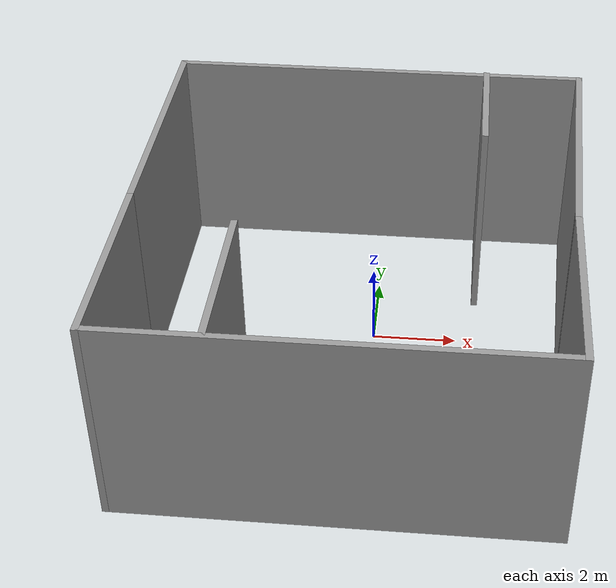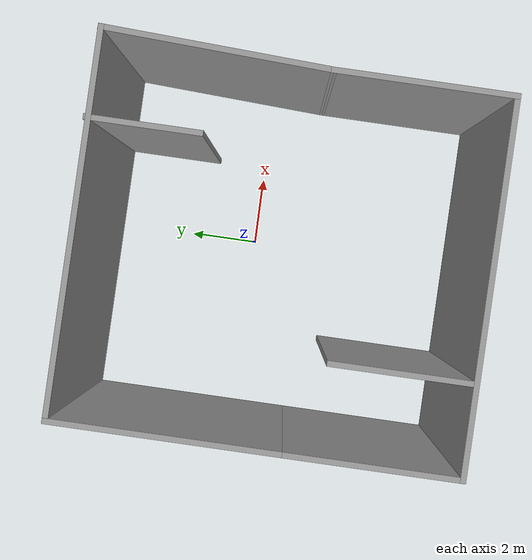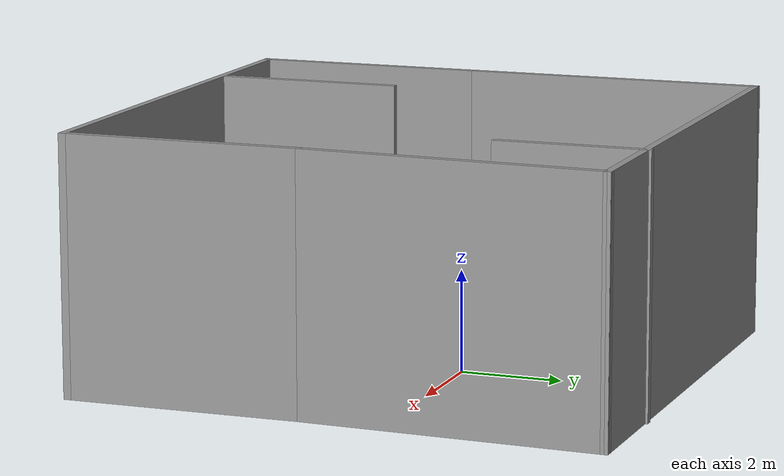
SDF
<?xml version='1.0'?>
<sdf version='1.7'>
  <model name='maailm.world'>
    <pose>-0.233436 -0.8805 0 0 -0 0</pose>
    <link name='Wall_1'>
      <collision name='Wall_1_Collision'>
        <geometry>
          <box>
            <size>4.74 0.15 5</size>
          </box>
        </geometry>
        <pose>0 0 2.5 0 -0 0</pose>
      </collision>
      <visual name='Wall_1_Visual'>
        <pose>0 0 2.5 0 -0 0</pose>
        <geometry>
          <box>
            <size>4.74 0.15 5</size>
          </box>
        </geometry>
        <material>
          <script>
            <uri>file://media/materials/scripts/gazebo.material</uri>
            <name>Gazebo/Grey</name>
          </script>
          <ambient>1 1 1 1</ambient>
        </material>
        <meta>
          <layer>0</layer>
        </meta>
      </visual>
      <pose>4.67344 -2.9545 0 0 -0 -1.5708</pose>
    </link>
    <link name='Wall_10'>
      <collision name='Wall_10_Collision'>
        <geometry>
          <box>
            <size>6 0.15 5</size>
          </box>
        </geometry>
        <pose>0 0 2.5 0 -0 0</pose>
      </collision>
      <visual name='Wall_10_Visual'>
        <pose>0 0 2.5 0 -0 0</pose>
        <geometry>
          <box>
            <size>6 0.15 5</size>
          </box>
        </geometry>
        <material>
          <script>
            <uri>file://media/materials/scripts/gazebo.material</uri>
            <name>Gazebo/Grey</name>
          </script>
          <ambient>1 1 1 1</ambient>
        </material>
        <meta>
          <layer>0</layer>
        </meta>
      </visual>
      <pose>-4.92656 2.2755 0 0 -0 1.5708</pose>
    </link>
    <link name='Wall_11'>
      <collision name='Wall_11_Collision'>
        <geometry>
          <box>
            <size>10 0.15 5</size>
          </box>
        </geometry>
        <pose>0 0 2.5 0 -0 0</pose>
      </collision>
      <visual name='Wall_11_Visual'>
        <pose>0 0 2.5 0 -0 0</pose>
        <geometry>
          <box>
            <size>10 0.15 5</size>
          </box>
        </geometry>
        <material>
          <script>
            <uri>file://media/materials/scripts/gazebo.material</uri>
            <name>Gazebo/Grey</name>
          </script>
          <ambient>1 1 1 1</ambient>
        </material>
        <meta>
          <layer>0</layer>
        </meta>
      </visual>
      <pose>-0.001564 5.2005 0 0 -0 0</pose>
    </link>
    <link name='Wall_12'>
      <collision name='Wall_12_Collision'>
        <geometry>
          <box>
            <size>6.01533 0.15 5</size>
          </box>
        </geometry>
        <pose>0 0 2.5 0 -0 0</pose>
      </collision>
      <visual name='Wall_12_Visual'>
        <pose>0 0 2.5 0 -0 0</pose>
        <geometry>
          <box>
            <size>6.01533 0.15 5</size>
          </box>
        </geometry>
        <material>
          <script>
            <uri>file://media/materials/scripts/gazebo.material</uri>
            <name>Gazebo/Grey</name>
          </script>
          <ambient>1 1 1 1</ambient>
        </material>
        <meta>
          <layer>0</layer>
        </meta>
      </visual>
      <pose>4.79844 2.2705 0 0 -0 -1.61343</pose>
    </link>
    <link name='Wall_2'>
      <collision name='Wall_2_Collision'>
        <geometry>
          <box>
            <size>9.75 0.15 5</size>
          </box>
        </geometry>
        <pose>0 0 2.5 0 -0 0</pose>
      </collision>
      <visual name='Wall_2_Visual'>
        <pose>0 0 2.5 0 -0 0</pose>
        <geometry>
          <box>
            <size>9.75 0.15 5</size>
          </box>
        </geometry>
        <material>
          <script>
            <uri>file://media/materials/scripts/gazebo.material</uri>
            <name>Gazebo/Grey</name>
          </script>
          <ambient>1 1 1 1</ambient>
        </material>
        <meta>
          <layer>0</layer>
        </meta>
      </visual>
      <pose>-0.126564 -5.2495 0 0 -0 3.14159</pose>
    </link>
    <link name='Wall_3'>
      <collision name='Wall_3_Collision'>
        <geometry>
          <box>
            <size>4.75 0.15 5</size>
          </box>
        </geometry>
        <pose>0 0 2.5 0 -0 0</pose>
      </collision>
      <visual name='Wall_3_Visual'>
        <pose>0 0 2.5 0 -0 0</pose>
        <geometry>
          <box>
            <size>4.75 0.15 5</size>
          </box>
        </geometry>
        <material>
          <script>
            <uri>file://media/materials/scripts/gazebo.material</uri>
            <name>Gazebo/Grey</name>
          </script>
          <ambient>1 1 1 1</ambient>
        </material>
        <meta>
          <layer>0</layer>
        </meta>
      </visual>
      <pose>-4.92656 -2.9495 0 0 -0 1.5708</pose>
    </link>
    <link name='Wall_5'>
      <collision name='Wall_5_Collision'>
        <geometry>
          <box>
            <size>3.75 0.15 5</size>
          </box>
        </geometry>
        <pose>0 0 2.5 0 -0 0</pose>
      </collision>
      <visual name='Wall_5_Visual'>
        <pose>0 0 2.5 0 -0 0</pose>
        <geometry>
          <box>
            <size>3.75 0.15 5</size>
          </box>
        </geometry>
        <material>
          <script>
            <uri>file://media/materials/scripts/gazebo.material</uri>
            <name>Gazebo/Grey</name>
          </script>
          <ambient>1 1 1 1</ambient>
        </material>
        <meta>
          <layer>0</layer>
        </meta>
      </visual>
      <pose>-2.52656 -3.3795 0 0 -0 1.5708</pose>
    </link>
    <link name='Wall_7'>
      <collision name='Wall_7_Collision'>
        <geometry>
          <box>
            <size>3 0.15 5</size>
          </box>
        </geometry>
        <pose>0 0 2.5 0 -0 0</pose>
      </collision>
      <visual name='Wall_7_Visual'>
        <pose>0 0 2.5 0 -0 0</pose>
        <geometry>
          <box>
            <size>3 0.15 5</size>
          </box>
        </geometry>
        <material>
          <script>
            <uri>file://media/materials/scripts/gazebo.material</uri>
            <name>Gazebo/Grey</name>
          </script>
          <ambient>1 1 1 1</ambient>
        </material>
        <meta>
          <layer>0</layer>
        </meta>
      </visual>
      <pose>2.66344 3.8245 0 0 -0 -1.5708</pose>
    </link>
    <static>1</static>
  </model>
</sdf>
